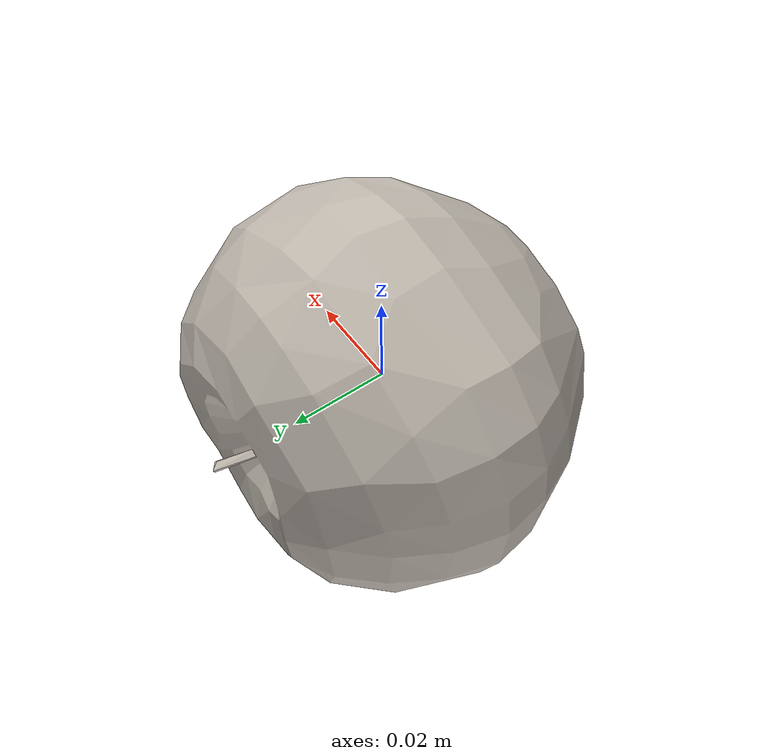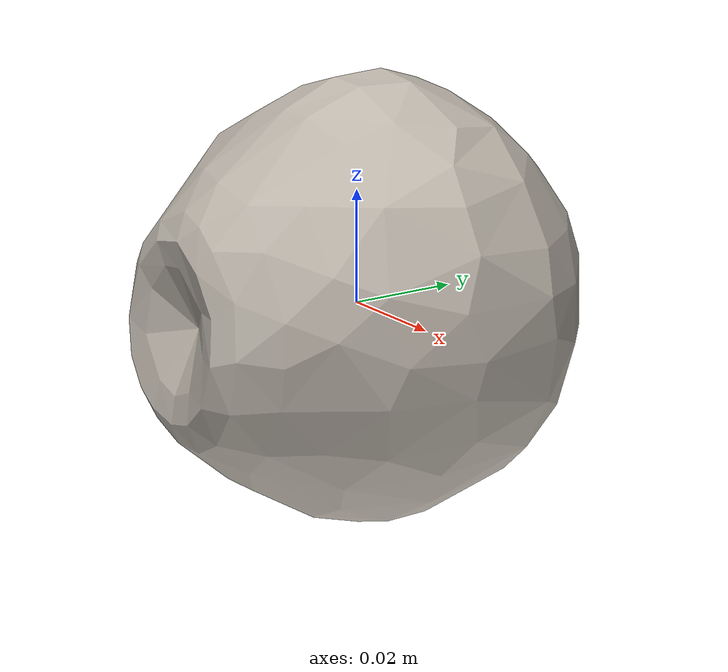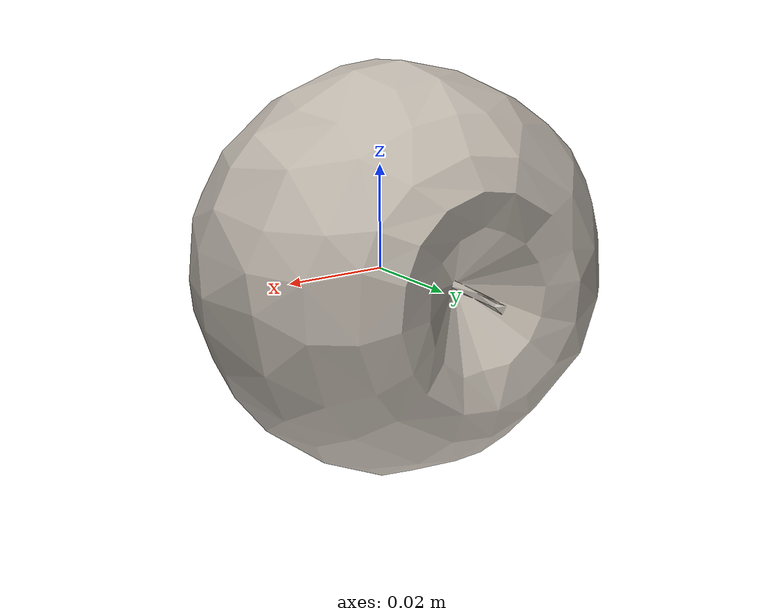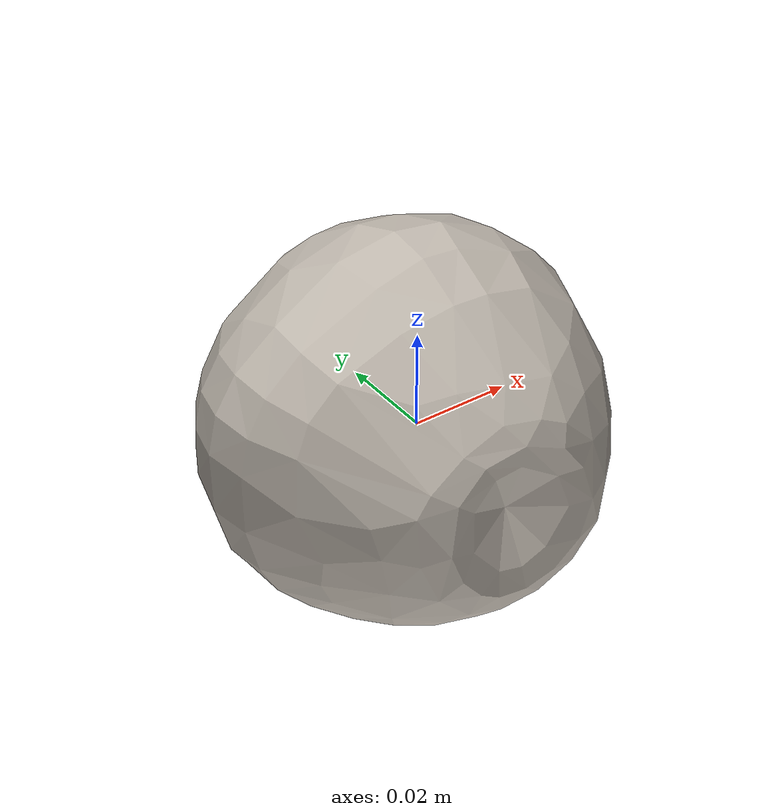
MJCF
<mujoco model="Apple_19">
  <compiler autolimits="true" boundmass="0.01" angle="radian"/>
  <default>
    <default class="/">
      <default class="__VISUAL_MJT__">
        <geom contype="0" conaffinity="0" group="0"/>
      </default>
      <default class="__STRUCTURAL_MJT__">
        <geom contype="8" conaffinity="15" group="4" friction="0.90000000000000002 0.90000000000000002 0.001" solref="0.025000000000000001 1" solimp="0.998 0.998 0.001"/>
      </default>
      <default class="__DYNAMIC_MJT__">
        <geom contype="1" conaffinity="15" group="4" friction="0.90000000000000002 0.90000000000000002 0.001" solref="0.025000000000000001 1" solimp="0.998 0.998 0.001"/>
      </default>
    </default>
  </default>
  <asset>
    <texture name="Apple2_Mat1" type="2d" file="Apple2_AlbedoTransparency1.png"/>
    <material name="material_Apple2_Mat1" class="/" texture="Apple2_Mat1" specular="0.5" shininess="0.5" rgba="1 1 1 1"/>
    <mesh name="Apple_19_apple_b4" class="/" file="Apple_19_apple_b4/Apple_19_apple_b4.obj" scale="1 1 1"/>
  </asset>
  <worldbody>
    <body name="Apple_19">
      <joint name="Apple_19_free" class="/" type="free" pos="0 0 0" axis="0 0 1" stiffness="0" range="0 0" armature="0" damping="0.10000000000000001" frictionloss="0"/>
      <body name="Apple_19_apple_b4" pos="-0.00141 0.0068900000000000003 -0.00021000000000000001" quat="1 0 0 0">
        <geom name="Apple_19_apple_b4" class="__VISUAL_MJT__" type="mesh" material="material_Apple2_Mat1" shellinertia="false" mesh="Apple_19_apple_b4"/>
        <geom name="Apple_19_PrimitiveCollider_0" class="__DYNAMIC_MJT__" type="capsule" size="0.039421685039997101 0.00058444589376449585" rgba="0 1 0 1" pos="-0.0014102309942245483 -0.0068871751427650452 0.00021327286958694458" quat="0.70710678118654757 0.70710678118654746 0 0"/>
      </body>
    </body>
  </worldbody>
</mujoco>
